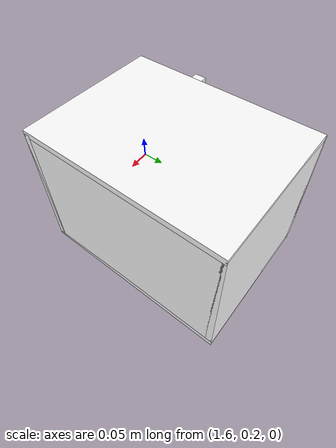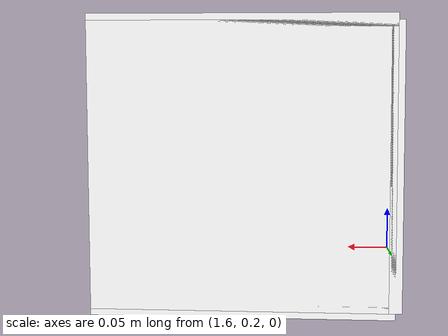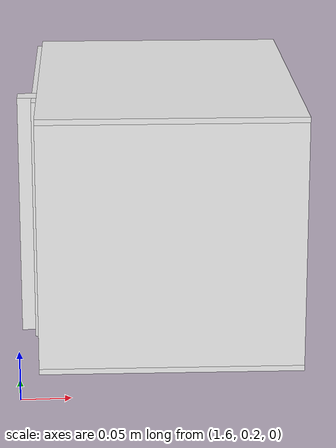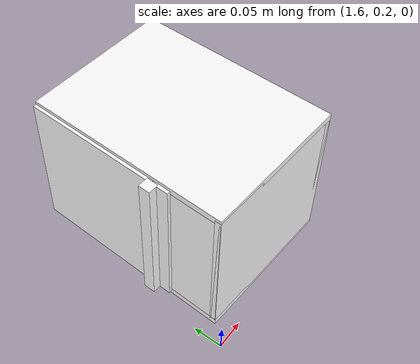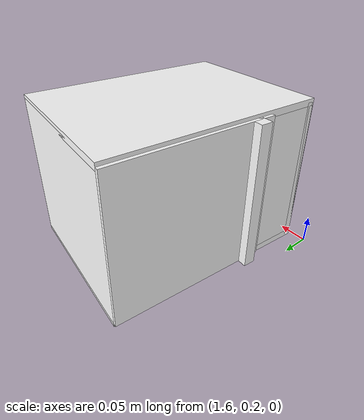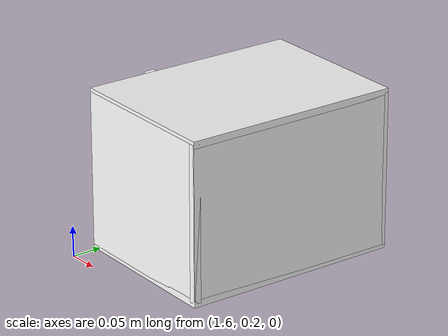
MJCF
<mujoco model="cabinet">
    <compiler angle="radian" eulerseq='zxy' />
    <option gravity = "0 0 0" />
    <option>
        <flag contact = "disable"/>
    </option>
    <statistic	extent="1.0" center="0.0 0.0 0.0"/>
    <visual>
        <map fogstart="3" fogend="5" force="0.1" znear=" 0.100000 " zfar=" 12.000000 "/>
    </visual>
    <size njmax="500" nconmax="100" />
    <actuator>
        <velocity joint="bottom_left_hinge" name="viva_revolution" kv='10'></velocity>
    </actuator>
    <asset>
        <texture builtin="flat" name="tabletex" height="32" width="32" rgb1="1 1 1" type="cube"></texture>
        <texture builtin="flat" name="objtex" height="32" width="32" rgb1="1 1 1" type="cube"></texture>
        <texture builtin="flat" name="handletex" height="32" width="32" rgb1="1 1 1" type="cube"></texture>
        <texture builtin="flat" name="wallpaper" height="32" width="32" rgb1="1 0 0" type="cube"></texture>
        <texture builtin="flat" name="kp" height="32" width="32" rgb1="1 1 1" type="cube"></texture>
        <material name="geomTable" shininess="0.03" specular="0.75" texture="tabletex"></material>
        <material name="geomObj" shininess="0.03" specular="0.75" texture="objtex"></material>
        <material name="geomHandle" shininess="0.03" specular="0.75" texture="handletex"></material>
        <material name="ax" shininess="0.03" specular="0.75" texture="wallpaper"></material>
        <material name="bg" shininess="0.03" specular="0.75" texture="wallpaper"></material>
        <material name="geomKeypad" shininess="0.03" specular="0.75" texture="kp"></material>
    </asset>
    <worldbody>
        <body name="cabinet_bottom" pos= " 1.758592 0.395685 0.021004 "  quat= " 0.024221 0.000000 0.000000 0.999707" >
            <inertial pos="0 0 0" mass="1" diaginertia="1 1 1" />
            <geom size= " 0.131356 0.177316 0.005643 "  type="box" material="geomObj" name="b"/>
            <body name="cabinet_left" pos= " 0.000000 -0.171673 0.124107 " >
                <inertial pos="0 0 0" mass="1" diaginertia="1 1 1" />
                <geom size= " 0.131356 0.005643 0.124107 "  type="box" material="geomObj" name="c" />
            </body>
            <body name="cabinet_right" pos= " 0.000000 0.171673 0.124107 " >
                <inertial pos="0 0 0" mass="1" diaginertia="1 1 1" />
                <geom size= " 0.131356 0.005643 0.124107 "  type="box" material="geomObj" name="d" />
            </body>
            <body name="cabinet_top" pos= " 0.000000 0.000000 0.248214 " >
                <inertial pos="0 0 0" mass="1" diaginertia="1 1 1" />
                <geom size= " 0.131356 0.177316 0.005643 "  type="box" material="geomObj" name="e"/>
            </body>
            <body name="cabinet_back" pos= " -0.125713 0.000000 0.124107 "  >
                <inertial pos="0 0 0" mass="1" diaginertia="1 1 1" />
                <geom size= " 0.005643 0.177316 0.124107 "  type="box" material="geomObj" name="f" />
            </body>
            <body name="cabinet_keypad" pos= " 0.005643 0.131987 0.124107 " >
                <inertial pos="0 0 0" mass="1" diaginertia="1 1 1" />
                <geom size= " 0.125713 0.044329 0.118464 "  type="box" material="geomKeypad" name="keypizzlemynizzle" />
            </body>
            <body name="cabinet_left_hinge" pos= " 0.131356 -0.177316 0.124107 " >
                <inertial pos= " 0.000000 0.132987 0.000000 "  mass="1" diaginertia="1 1 1" />
                <joint name="bottom_left_hinge" type="hinge" pos="0 0 0" axis="0 0 1" limited="true" range= "-2.3 0"  />
                <geom size= " 0.005643 0.132987 0.124107 "  pos= " 0.000000 0.132987 0.000000 "  type="box" material="geomObj" name="g"/>
                <body name="handle_link" pos= " 0.010000 0.235974 0.000000 " >
                    <inertial pos="0 0 0" mass="1" diaginertia="1 1 1" />
                    <geom size= " 0.010000 0.010000 0.124107 "  type="box" material="geomHandle" name="h"/>
                </body>
            </body>
        </body>
        <body name="external_camera_body_0" pos="0.0 0 0.00" >
            <camera euler="-1.57 1.57 0.0" fovy=" 54.280851 " name="external_camera_0" pos="0.0 0 0"></camera>
            <inertial pos= " 0.00 0.0 0.000000 " mass="1" diaginertia="1 1 1" />
            <joint name="cam_j" pos="0.0 0 0" axis = "1 0 0" type="free" />
        </body>
    </worldbody>
</mujoco>
